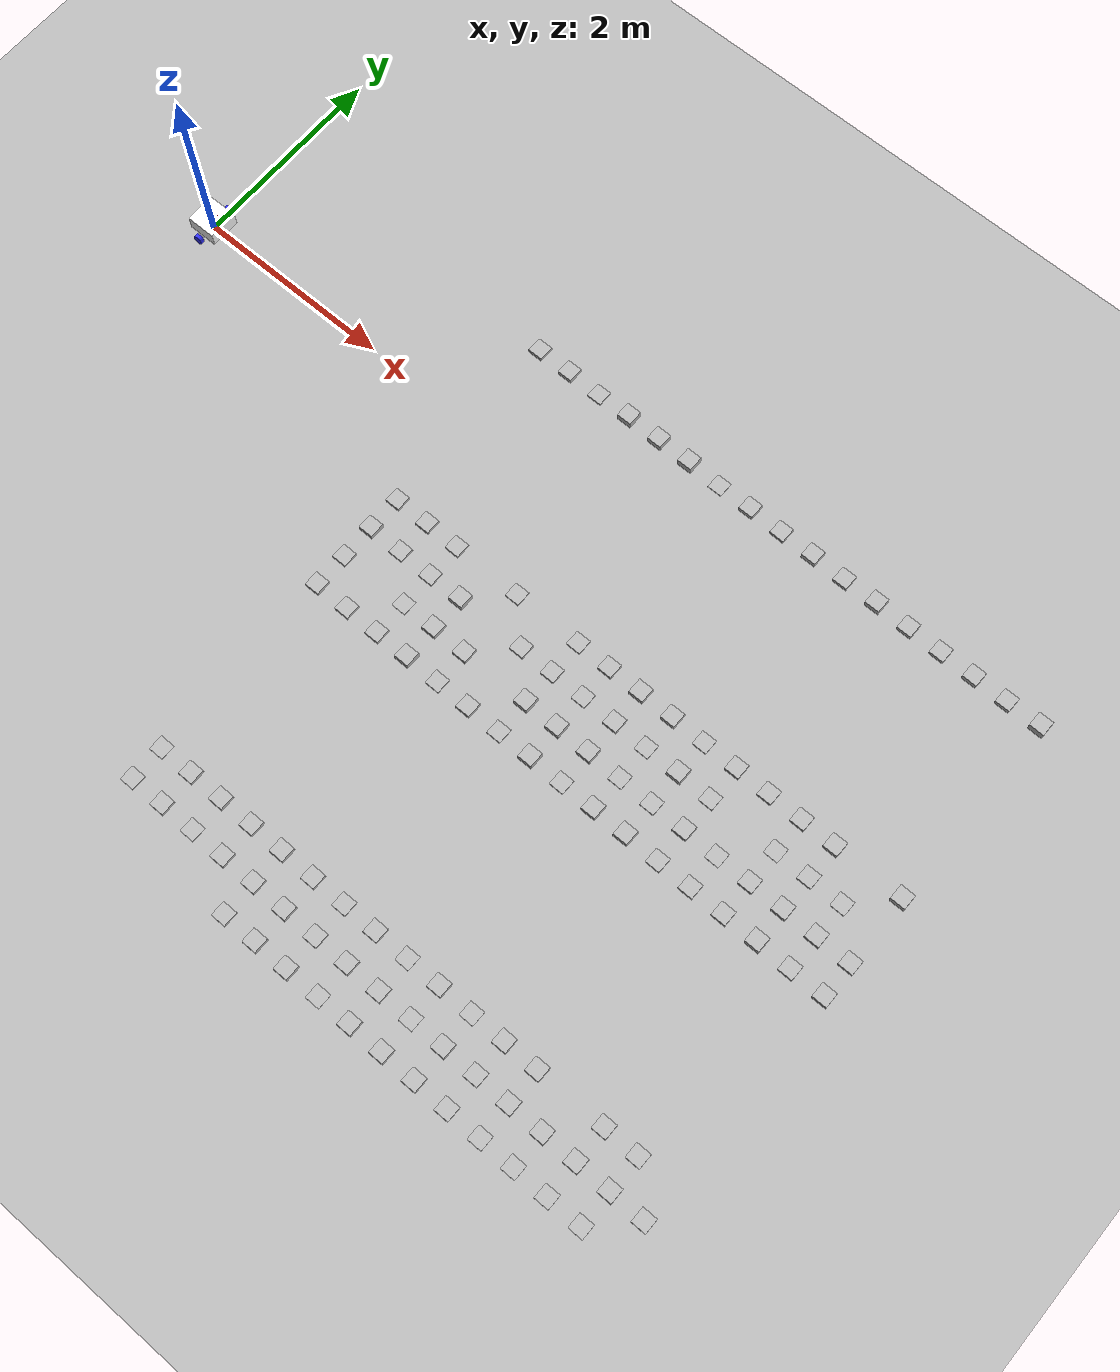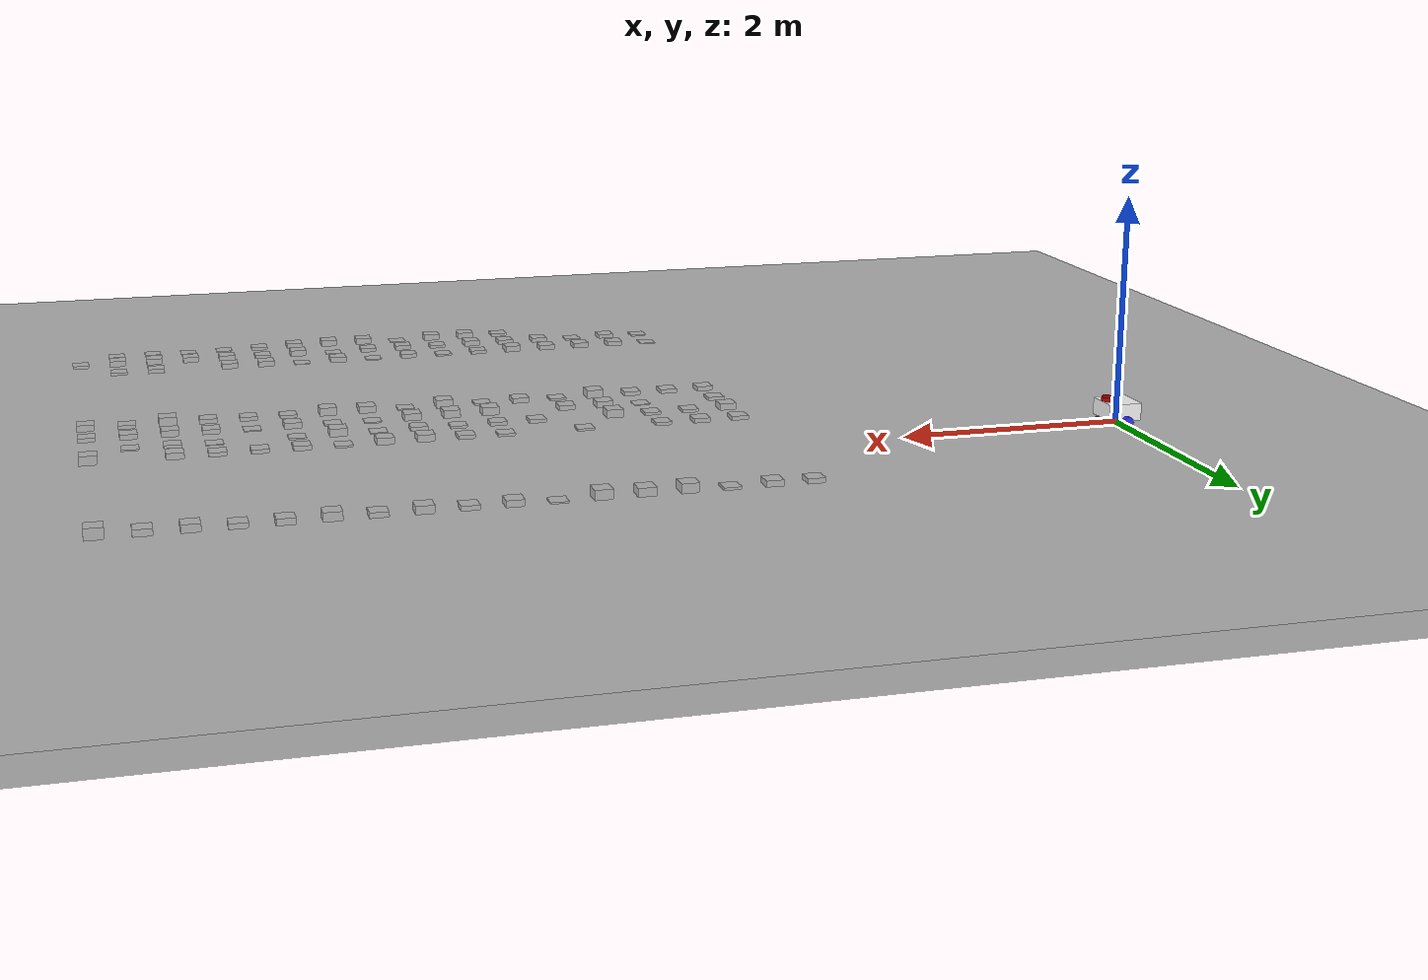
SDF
<sdf version="1.6">
 <world name="ugv_rough">
  <model name="ground">
   <static>true</static>
   <link name="l">
    <collision name="c"><geometry><box><size>60 60 0.2</size></box></geometry></collision>
    <visual name="v"><geometry><box><size>60 60 0.2</size></box></geometry></visual>
    <pose>0 0 -0.1 0 0 0</pose>
   </link>
  </model>
  <model name="r2_2">
   <static>true</static>
   <pose>3.175 -4.325 0.0066 0 0 0</pose>
   <link name="l">
    <collision name="c"><geometry><box><size>0.15 0.15 0.013256710384994794</size></box></geometry></collision>
    <visual name="v"><geometry><box><size>0.15 0.15 0.013256710384994794</size></box></geometry></visual>
   </link>
  </model>
  <model name="r2_3">
   <static>true</static>
   <pose>3.175 -3.975 0.0039 0 0 0</pose>
   <link name="l">
    <collision name="c"><geometry><box><size>0.15 0.15 0.007820225035002343</size></box></geometry></collision>
    <visual name="v"><geometry><box><size>0.15 0.15 0.007820225035002343</size></box></geometry></visual>
   </link>
  </model>
  <model name="r2_6">
   <static>true</static>
   <pose>3.525 -4.325 0.0186 0 0 0</pose>
   <link name="l">
    <collision name="c"><geometry><box><size>0.15 0.15 0.03726730991594243</size></box></geometry></collision>
    <visual name="v"><geometry><box><size>0.15 0.15 0.03726730991594243</size></box></geometry></visual>
   </link>
  </model>
  <model name="r2_7">
   <static>true</static>
   <pose>3.525 -3.975 0.0212 0 0 0</pose>
   <link name="l">
    <collision name="c"><geometry><box><size>0.15 0.15 0.04243665575795364</size></box></geometry></collision>
    <visual name="v"><geometry><box><size>0.15 0.15 0.04243665575795364</size></box></geometry></visual>
   </link>
  </model>
  <model name="r2_10">
   <static>true</static>
   <pose>3.875 -4.325 0.0068 0 0 0</pose>
   <link name="l">
    <collision name="c"><geometry><box><size>0.15 0.15 0.013529082386057052</size></box></geometry></collision>
    <visual name="v"><geometry><box><size>0.15 0.15 0.013529082386057052</size></box></geometry></visual>
   </link>
  </model>
  <model name="r2_11">
   <static>true</static>
   <pose>3.875 -3.975 0.0237 0 0 0</pose>
   <link name="l">
    <collision name="c"><geometry><box><size>0.15 0.15 0.047312882709659936</size></box></geometry></collision>
    <visual name="v"><geometry><box><size>0.15 0.15 0.047312882709659936</size></box></geometry></visual>
   </link>
  </model>
  <model name="r2_14">
   <static>true</static>
   <pose>4.225 -4.325 0.0203 0 0 0</pose>
   <link name="l">
    <collision name="c"><geometry><box><size>0.15 0.15 0.0405842556638755</size></box></geometry></collision>
    <visual name="v"><geometry><box><size>0.15 0.15 0.0405842556638755</size></box></geometry></visual>
   </link>
  </model>
  <model name="r2_15">
   <static>true</static>
   <pose>4.225 -3.975 0.0227 0 0 0</pose>
   <link name="l">
    <collision name="c"><geometry><box><size>0.15 0.15 0.04540995489792459</size></box></geometry></collision>
    <visual name="v"><geometry><box><size>0.15 0.15 0.04540995489792459</size></box></geometry></visual>
   </link>
  </model>
  <model name="r2_17">
   <static>true</static>
   <pose>4.575 -4.675 0.0140 0 0 0</pose>
   <link name="l">
    <collision name="c"><geometry><box><size>0.15 0.15 0.02797375995807051</size></box></geometry></collision>
    <visual name="v"><geometry><box><size>0.15 0.15 0.02797375995807051</size></box></geometry></visual>
   </link>
  </model>
  <model name="r2_18">
   <static>true</static>
   <pose>4.575 -4.325 0.0196 0 0 0</pose>
   <link name="l">
    <collision name="c"><geometry><box><size>0.15 0.15 0.039159514806595436</size></box></geometry></collision>
    <visual name="v"><geometry><box><size>0.15 0.15 0.039159514806595436</size></box></geometry></visual>
   </link>
  </model>
  <model name="r2_19">
   <static>true</static>
   <pose>4.575 -3.975 0.0280 0 0 0</pose>
   <link name="l">
    <collision name="c"><geometry><box><size>0.15 0.15 0.05608994125541822</size></box></geometry></collision>
    <visual name="v"><geometry><box><size>0.15 0.15 0.05608994125541822</size></box></geometry></visual>
   </link>
  </model>
  <model name="r2_21">
   <static>true</static>
   <pose>4.925 -4.675 0.0270 0 0 0</pose>
   <link name="l">
    <collision name="c"><geometry><box><size>0.15 0.15 0.054028632875019744</size></box></geometry></collision>
    <visual name="v"><geometry><box><size>0.15 0.15 0.054028632875019744</size></box></geometry></visual>
   </link>
  </model>
  <model name="r2_22">
   <static>true</static>
   <pose>4.925 -4.325 0.0255 0 0 0</pose>
   <link name="l">
    <collision name="c"><geometry><box><size>0.15 0.15 0.05093037567539028</size></box></geometry></collision>
    <visual name="v"><geometry><box><size>0.15 0.15 0.05093037567539028</size></box></geometry></visual>
   </link>
  </model>
  <model name="r2_23">
   <static>true</static>
   <pose>4.925 -3.975 0.0157 0 0 0</pose>
   <link name="l">
    <collision name="c"><geometry><box><size>0.15 0.15 0.03146908518881094</size></box></geometry></collision>
    <visual name="v"><geometry><box><size>0.15 0.15 0.03146908518881094</size></box></geometry></visual>
   </link>
  </model>
  <model name="r2_25">
   <static>true</static>
   <pose>5.275 -4.675 0.0281 0 0 0</pose>
   <link name="l">
    <collision name="c"><geometry><box><size>0.15 0.15 0.05613510296844524</size></box></geometry></collision>
    <visual name="v"><geometry><box><size>0.15 0.15 0.05613510296844524</size></box></geometry></visual>
   </link>
  </model>
  <model name="r2_26">
   <static>true</static>
   <pose>5.275 -4.325 0.0132 0 0 0</pose>
   <link name="l">
    <collision name="c"><geometry><box><size>0.15 0.15 0.026409479955861976</size></box></geometry></collision>
    <visual name="v"><geometry><box><size>0.15 0.15 0.026409479955861976</size></box></geometry></visual>
   </link>
  </model>
  <model name="r2_27">
   <static>true</static>
   <pose>5.275 -3.975 0.0087 0 0 0</pose>
   <link name="l">
    <collision name="c"><geometry><box><size>0.15 0.15 0.01736180962630515</size></box></geometry></collision>
    <visual name="v"><geometry><box><size>0.15 0.15 0.01736180962630515</size></box></geometry></visual>
   </link>
  </model>
  <model name="r2_29">
   <static>true</static>
   <pose>5.625 -4.675 0.0030 0 0 0</pose>
   <link name="l">
    <collision name="c"><geometry><box><size>0.15 0.15 0.006075682831431761</size></box></geometry></collision>
    <visual name="v"><geometry><box><size>0.15 0.15 0.006075682831431761</size></box></geometry></visual>
   </link>
  </model>
  <model name="r2_30">
   <static>true</static>
   <pose>5.625 -4.325 0.0216 0 0 0</pose>
   <link name="l">
    <collision name="c"><geometry><box><size>0.15 0.15 0.04312362406662981</size></box></geometry></collision>
    <visual name="v"><geometry><box><size>0.15 0.15 0.04312362406662981</size></box></geometry></visual>
   </link>
  </model>
  <model name="r2_31">
   <static>true</static>
   <pose>5.625 -3.975 0.0193 0 0 0</pose>
   <link name="l">
    <collision name="c"><geometry><box><size>0.15 0.15 0.03869738060338249</size></box></geometry></collision>
    <visual name="v"><geometry><box><size>0.15 0.15 0.03869738060338249</size></box></geometry></visual>
   </link>
  </model>
  <model name="r2_33">
   <static>true</static>
   <pose>5.975 -4.675 0.0282 0 0 0</pose>
   <link name="l">
    <collision name="c"><geometry><box><size>0.15 0.15 0.05635785198599581</size></box></geometry></collision>
    <visual name="v"><geometry><box><size>0.15 0.15 0.05635785198599581</size></box></geometry></visual>
   </link>
  </model>
  <model name="r2_34">
   <static>true</static>
   <pose>5.975 -4.325 0.0183 0 0 0</pose>
   <link name="l">
    <collision name="c"><geometry><box><size>0.15 0.15 0.03655429108189374</size></box></geometry></collision>
    <visual name="v"><geometry><box><size>0.15 0.15 0.03655429108189374</size></box></geometry></visual>
   </link>
  </model>
  <model name="r2_35">
   <static>true</static>
   <pose>5.975 -3.975 0.0046 0 0 0</pose>
   <link name="l">
    <collision name="c"><geometry><box><size>0.15 0.15 0.009290719895527067</size></box></geometry></collision>
    <visual name="v"><geometry><box><size>0.15 0.15 0.009290719895527067</size></box></geometry></visual>
   </link>
  </model>
  <model name="r2_37">
   <static>true</static>
   <pose>6.325 -4.675 0.0286 0 0 0</pose>
   <link name="l">
    <collision name="c"><geometry><box><size>0.15 0.15 0.05725526355006548</size></box></geometry></collision>
    <visual name="v"><geometry><box><size>0.15 0.15 0.05725526355006548</size></box></geometry></visual>
   </link>
  </model>
  <model name="r2_38">
   <static>true</static>
   <pose>6.325 -4.325 0.0026 0 0 0</pose>
   <link name="l">
    <collision name="c"><geometry><box><size>0.15 0.15 0.005107141670628339</size></box></geometry></collision>
    <visual name="v"><geometry><box><size>0.15 0.15 0.005107141670628339</size></box></geometry></visual>
   </link>
  </model>
  <model name="r2_39">
   <static>true</static>
   <pose>6.325 -3.975 0.0243 0 0 0</pose>
   <link name="l">
    <collision name="c"><geometry><box><size>0.15 0.15 0.04861249333709487</size></box></geometry></collision>
    <visual name="v"><geometry><box><size>0.15 0.15 0.04861249333709487</size></box></geometry></visual>
   </link>
  </model>
  <model name="r2_41">
   <static>true</static>
   <pose>6.675 -4.675 0.0239 0 0 0</pose>
   <link name="l">
    <collision name="c"><geometry><box><size>0.15 0.15 0.04784587832204232</size></box></geometry></collision>
    <visual name="v"><geometry><box><size>0.15 0.15 0.04784587832204232</size></box></geometry></visual>
   </link>
  </model>
  <model name="r2_42">
   <static>true</static>
   <pose>6.675 -4.325 0.0276 0 0 0</pose>
   <link name="l">
    <collision name="c"><geometry><box><size>0.15 0.15 0.05527527500507175</size></box></geometry></collision>
    <visual name="v"><geometry><box><size>0.15 0.15 0.05527527500507175</size></box></geometry></visual>
   </link>
  </model>
  <model name="r2_43">
   <static>true</static>
   <pose>6.675 -3.975 0.0025 0 0 0</pose>
   <link name="l">
    <collision name="c"><geometry><box><size>0.15 0.15 0.00504084069925413</size></box></geometry></collision>
    <visual name="v"><geometry><box><size>0.15 0.15 0.00504084069925413</size></box></geometry></visual>
   </link>
  </model>
  <model name="r2_45">
   <static>true</static>
   <pose>7.025 -4.675 0.0145 0 0 0</pose>
   <link name="l">
    <collision name="c"><geometry><box><size>0.15 0.15 0.02896229716275482</size></box></geometry></collision>
    <visual name="v"><geometry><box><size>0.15 0.15 0.02896229716275482</size></box></geometry></visual>
   </link>
  </model>
  <model name="r2_46">
   <static>true</static>
   <pose>7.025 -4.325 0.0148 0 0 0</pose>
   <link name="l">
    <collision name="c"><geometry><box><size>0.15 0.15 0.029557489277120635</size></box></geometry></collision>
    <visual name="v"><geometry><box><size>0.15 0.15 0.029557489277120635</size></box></geometry></visual>
   </link>
  </model>
  <model name="r2_47">
   <static>true</static>
   <pose>7.025 -3.975 0.0251 0 0 0</pose>
   <link name="l">
    <collision name="c"><geometry><box><size>0.15 0.15 0.050287287544849846</size></box></geometry></collision>
    <visual name="v"><geometry><box><size>0.15 0.15 0.050287287544849846</size></box></geometry></visual>
   </link>
  </model>
  <model name="r2_49">
   <static>true</static>
   <pose>7.375 -4.675 0.0054 0 0 0</pose>
   <link name="l">
    <collision name="c"><geometry><box><size>0.15 0.15 0.010802139809139048</size></box></geometry></collision>
    <visual name="v"><geometry><box><size>0.15 0.15 0.010802139809139048</size></box></geometry></visual>
   </link>
  </model>
  <model name="r2_50">
   <static>true</static>
   <pose>7.375 -4.325 0.0225 0 0 0</pose>
   <link name="l">
    <collision name="c"><geometry><box><size>0.15 0.15 0.04507203792495816</size></box></geometry></collision>
    <visual name="v"><geometry><box><size>0.15 0.15 0.04507203792495816</size></box></geometry></visual>
   </link>
  </model>
  <model name="r2_51">
   <static>true</static>
   <pose>7.375 -3.975 0.0246 0 0 0</pose>
   <link name="l">
    <collision name="c"><geometry><box><size>0.15 0.15 0.04921389009632021</size></box></geometry></collision>
    <visual name="v"><geometry><box><size>0.15 0.15 0.04921389009632021</size></box></geometry></visual>
   </link>
  </model>
  <model name="r2_53">
   <static>true</static>
   <pose>7.725 -4.675 0.0028 0 0 0</pose>
   <link name="l">
    <collision name="c"><geometry><box><size>0.15 0.15 0.0055140146984223246</size></box></geometry></collision>
    <visual name="v"><geometry><box><size>0.15 0.15 0.0055140146984223246</size></box></geometry></visual>
   </link>
  </model>
  <model name="r2_54">
   <static>true</static>
   <pose>7.725 -4.325 0.0248 0 0 0</pose>
   <link name="l">
    <collision name="c"><geometry><box><size>0.15 0.15 0.04965137477425715</size></box></geometry></collision>
    <visual name="v"><geometry><box><size>0.15 0.15 0.04965137477425715</size></box></geometry></visual>
   </link>
  </model>
  <model name="r2_57">
   <static>true</static>
   <pose>8.075 -4.675 0.0069 0 0 0</pose>
   <link name="l">
    <collision name="c"><geometry><box><size>0.15 0.15 0.013852289244110649</size></box></geometry></collision>
    <visual name="v"><geometry><box><size>0.15 0.15 0.013852289244110649</size></box></geometry></visual>
   </link>
  </model>
  <model name="r2_58">
   <static>true</static>
   <pose>8.075 -4.325 0.0275 0 0 0</pose>
   <link name="l">
    <collision name="c"><geometry><box><size>0.15 0.15 0.05505852758583187</size></box></geometry></collision>
    <visual name="v"><geometry><box><size>0.15 0.15 0.05505852758583187</size></box></geometry></visual>
   </link>
  </model>
  <model name="r2_59">
   <static>true</static>
   <pose>8.075 -3.975 0.0190 0 0 0</pose>
   <link name="l">
    <collision name="c"><geometry><box><size>0.15 0.15 0.03802440422649483</size></box></geometry></collision>
    <visual name="v"><geometry><box><size>0.15 0.15 0.03802440422649483</size></box></geometry></visual>
   </link>
  </model>
  <model name="r2_61">
   <static>true</static>
   <pose>8.425 -4.675 0.0047 0 0 0</pose>
   <link name="l">
    <collision name="c"><geometry><box><size>0.15 0.15 0.009415597594498148</size></box></geometry></collision>
    <visual name="v"><geometry><box><size>0.15 0.15 0.009415597594498148</size></box></geometry></visual>
   </link>
  </model>
  <model name="r2_62">
   <static>true</static>
   <pose>8.425 -4.325 0.0267 0 0 0</pose>
   <link name="l">
    <collision name="c"><geometry><box><size>0.15 0.15 0.053427337198977354</size></box></geometry></collision>
    <visual name="v"><geometry><box><size>0.15 0.15 0.053427337198977354</size></box></geometry></visual>
   </link>
  </model>
  <model name="r2_63">
   <static>true</static>
   <pose>8.425 -3.975 0.0118 0 0 0</pose>
   <link name="l">
    <collision name="c"><geometry><box><size>0.15 0.15 0.023606247842656955</size></box></geometry></collision>
    <visual name="v"><geometry><box><size>0.15 0.15 0.023606247842656955</size></box></geometry></visual>
   </link>
  </model>
  <model name="r2_66">
   <static>true</static>
   <pose>8.775 -4.325 0.0129 0 0 0</pose>
   <link name="l">
    <collision name="c"><geometry><box><size>0.15 0.15 0.02582126996665084</size></box></geometry></collision>
    <visual name="v"><geometry><box><size>0.15 0.15 0.02582126996665084</size></box></geometry></visual>
   </link>
  </model>
  <model name="r3_0">
   <static>true</static>
   <pose>3.175 -2.025 0.0199 0 0 0</pose>
   <link name="l">
    <collision name="c"><geometry><box><size>0.15 0.15 0.03978731367518426</size></box></geometry></collision>
    <visual name="v"><geometry><box><size>0.15 0.15 0.03978731367518426</size></box></geometry></visual>
   </link>
  </model>
  <model name="r3_1">
   <static>true</static>
   <pose>3.175 -1.675 0.0144 0 0 0</pose>
   <link name="l">
    <collision name="c"><geometry><box><size>0.15 0.15 0.028799236548820543</size></box></geometry></collision>
    <visual name="v"><geometry><box><size>0.15 0.15 0.028799236548820543</size></box></geometry></visual>
   </link>
  </model>
  <model name="r3_2">
   <static>true</static>
   <pose>3.175 -1.325 0.0289 0 0 0</pose>
   <link name="l">
    <collision name="c"><geometry><box><size>0.15 0.15 0.0577649405378974</size></box></geometry></collision>
    <visual name="v"><geometry><box><size>0.15 0.15 0.0577649405378974</size></box></geometry></visual>
   </link>
  </model>
  <model name="r3_3">
   <static>true</static>
   <pose>3.175 -0.975 0.0179 0 0 0</pose>
   <link name="l">
    <collision name="c"><geometry><box><size>0.15 0.15 0.03573770137980951</size></box></geometry></collision>
    <visual name="v"><geometry><box><size>0.15 0.15 0.03573770137980951</size></box></geometry></visual>
   </link>
  </model>
  <model name="r3_4">
   <static>true</static>
   <pose>3.525 -2.025 0.0181 0 0 0</pose>
   <link name="l">
    <collision name="c"><geometry><box><size>0.15 0.15 0.03626877212770383</size></box></geometry></collision>
    <visual name="v"><geometry><box><size>0.15 0.15 0.03626877212770383</size></box></geometry></visual>
   </link>
  </model>
  <model name="r3_6">
   <static>true</static>
   <pose>3.525 -1.325 0.0134 0 0 0</pose>
   <link name="l">
    <collision name="c"><geometry><box><size>0.15 0.15 0.026792071501047527</size></box></geometry></collision>
    <visual name="v"><geometry><box><size>0.15 0.15 0.026792071501047527</size></box></geometry></visual>
   </link>
  </model>
  <model name="r3_7">
   <static>true</static>
   <pose>3.525 -0.975 0.0190 0 0 0</pose>
   <link name="l">
    <collision name="c"><geometry><box><size>0.15 0.15 0.0380435219419014</size></box></geometry></collision>
    <visual name="v"><geometry><box><size>0.15 0.15 0.0380435219419014</size></box></geometry></visual>
   </link>
  </model>
  <model name="r3_8">
   <static>true</static>
   <pose>3.875 -2.025 0.0181 0 0 0</pose>
   <link name="l">
    <collision name="c"><geometry><box><size>0.15 0.15 0.03610588520919266</size></box></geometry></collision>
    <visual name="v"><geometry><box><size>0.15 0.15 0.03610588520919266</size></box></geometry></visual>
   </link>
  </model>
  <model name="r3_9">
   <static>true</static>
   <pose>3.875 -1.675 0.0035 0 0 0</pose>
   <link name="l">
    <collision name="c"><geometry><box><size>0.15 0.15 0.0070311796048823805</size></box></geometry></collision>
    <visual name="v"><geometry><box><size>0.15 0.15 0.0070311796048823805</size></box></geometry></visual>
   </link>
  </model>
  <model name="r3_10">
   <static>true</static>
   <pose>3.875 -1.325 0.0118 0 0 0</pose>
   <link name="l">
    <collision name="c"><geometry><box><size>0.15 0.15 0.023607737346454574</size></box></geometry></collision>
    <visual name="v"><geometry><box><size>0.15 0.15 0.023607737346454574</size></box></geometry></visual>
   </link>
  </model>
  <model name="r3_11">
   <static>true</static>
   <pose>3.875 -0.975 0.0135 0 0 0</pose>
   <link name="l">
    <collision name="c"><geometry><box><size>0.15 0.15 0.02709058736644085</size></box></geometry></collision>
    <visual name="v"><geometry><box><size>0.15 0.15 0.02709058736644085</size></box></geometry></visual>
   </link>
  </model>
  <model name="r3_12">
   <static>true</static>
   <pose>4.225 -2.025 0.0361 0 0 0</pose>
   <link name="l">
    <collision name="c"><geometry><box><size>0.15 0.15 0.07216767222041935</size></box></geometry></collision>
    <visual name="v"><geometry><box><size>0.15 0.15 0.07216767222041935</size></box></geometry></visual>
   </link>
  </model>
  <model name="r3_13">
   <static>true</static>
   <pose>4.225 -1.675 0.0287 0 0 0</pose>
   <link name="l">
    <collision name="c"><geometry><box><size>0.15 0.15 0.057387789887413054</size></box></geometry></collision>
    <visual name="v"><geometry><box><size>0.15 0.15 0.057387789887413054</size></box></geometry></visual>
   </link>
  </model>
  <model name="r3_14">
   <static>true</static>
   <pose>4.225 -1.325 0.0359 0 0 0</pose>
   <link name="l">
    <collision name="c"><geometry><box><size>0.15 0.15 0.07188927334160525</size></box></geometry></collision>
    <visual name="v"><geometry><box><size>0.15 0.15 0.07188927334160525</size></box></geometry></visual>
   </link>
  </model>
  <model name="r3_16">
   <static>true</static>
   <pose>4.575 -2.025 0.0091 0 0 0</pose>
   <link name="l">
    <collision name="c"><geometry><box><size>0.15 0.15 0.018277457167349402</size></box></geometry></collision>
    <visual name="v"><geometry><box><size>0.15 0.15 0.018277457167349402</size></box></geometry></visual>
   </link>
  </model>
  <model name="r3_17">
   <static>true</static>
   <pose>4.575 -1.675 0.0215 0 0 0</pose>
   <link name="l">
    <collision name="c"><geometry><box><size>0.15 0.15 0.04305176529085866</size></box></geometry></collision>
    <visual name="v"><geometry><box><size>0.15 0.15 0.04305176529085866</size></box></geometry></visual>
   </link>
  </model>
  <model name="r3_19">
   <static>true</static>
   <pose>4.575 -0.975 0.0092 0 0 0</pose>
   <link name="l">
    <collision name="c"><geometry><box><size>0.15 0.15 0.01834845285690344</size></box></geometry></collision>
    <visual name="v"><geometry><box><size>0.15 0.15 0.01834845285690344</size></box></geometry></visual>
   </link>
  </model>
  <model name="r3_20">
   <static>true</static>
   <pose>4.925 -2.025 0.0224 0 0 0</pose>
   <link name="l">
    <collision name="c"><geometry><box><size>0.15 0.15 0.044785298438368065</size></box></geometry></collision>
    <visual name="v"><geometry><box><size>0.15 0.15 0.044785298438368065</size></box></geometry></visual>
   </link>
  </model>
  <model name="r3_22">
   <static>true</static>
   <pose>4.925 -1.325 0.0157 0 0 0</pose>
   <link name="l">
    <collision name="c"><geometry><box><size>0.15 0.15 0.03136282226015231</size></box></geometry></collision>
    <visual name="v"><geometry><box><size>0.15 0.15 0.03136282226015231</size></box></geometry></visual>
   </link>
  </model>
  <model name="r3_24">
   <static>true</static>
   <pose>5.275 -2.025 0.0096 0 0 0</pose>
   <link name="l">
    <collision name="c"><geometry><box><size>0.15 0.15 0.019245496212931403</size></box></geometry></collision>
    <visual name="v"><geometry><box><size>0.15 0.15 0.019245496212931403</size></box></geometry></visual>
   </link>
  </model>
  <model name="r3_25">
   <static>true</static>
   <pose>5.275 -1.675 0.0358 0 0 0</pose>
   <link name="l">
    <collision name="c"><geometry><box><size>0.15 0.15 0.07163030312678313</size></box></geometry></collision>
    <visual name="v"><geometry><box><size>0.15 0.15 0.07163030312678313</size></box></geometry></visual>
   </link>
  </model>
  <model name="r3_26">
   <static>true</static>
   <pose>5.275 -1.325 0.0155 0 0 0</pose>
   <link name="l">
    <collision name="c"><geometry><box><size>0.15 0.15 0.030932606494841936</size></box></geometry></collision>
    <visual name="v"><geometry><box><size>0.15 0.15 0.030932606494841936</size></box></geometry></visual>
   </link>
  </model>
  <model name="r3_27">
   <static>true</static>
   <pose>5.275 -0.975 0.0107 0 0 0</pose>
   <link name="l">
    <collision name="c"><geometry><box><size>0.15 0.15 0.021428515556068027</size></box></geometry></collision>
    <visual name="v"><geometry><box><size>0.15 0.15 0.021428515556068027</size></box></geometry></visual>
   </link>
  </model>
  <model name="r3_28">
   <static>true</static>
   <pose>5.625 -2.025 0.0365 0 0 0</pose>
   <link name="l">
    <collision name="c"><geometry><box><size>0.15 0.15 0.07290938206406333</size></box></geometry></collision>
    <visual name="v"><geometry><box><size>0.15 0.15 0.07290938206406333</size></box></geometry></visual>
   </link>
  </model>
  <model name="r3_29">
   <static>true</static>
   <pose>5.625 -1.675 0.0342 0 0 0</pose>
   <link name="l">
    <collision name="c"><geometry><box><size>0.15 0.15 0.06849351522834843</size></box></geometry></collision>
    <visual name="v"><geometry><box><size>0.15 0.15 0.06849351522834843</size></box></geometry></visual>
   </link>
  </model>
  <model name="r3_30">
   <static>true</static>
   <pose>5.625 -1.325 0.0102 0 0 0</pose>
   <link name="l">
    <collision name="c"><geometry><box><size>0.15 0.15 0.020389075504252202</size></box></geometry></collision>
    <visual name="v"><geometry><box><size>0.15 0.15 0.020389075504252202</size></box></geometry></visual>
   </link>
  </model>
  <model name="r3_31">
   <static>true</static>
   <pose>5.625 -0.975 0.0171 0 0 0</pose>
   <link name="l">
    <collision name="c"><geometry><box><size>0.15 0.15 0.03417428429066563</size></box></geometry></collision>
    <visual name="v"><geometry><box><size>0.15 0.15 0.03417428429066563</size></box></geometry></visual>
   </link>
  </model>
  <model name="r3_32">
   <static>true</static>
   <pose>5.975 -2.025 0.0079 0 0 0</pose>
   <link name="l">
    <collision name="c"><geometry><box><size>0.15 0.15 0.015775584100856062</size></box></geometry></collision>
    <visual name="v"><geometry><box><size>0.15 0.15 0.015775584100856062</size></box></geometry></visual>
   </link>
  </model>
  <model name="r3_33">
   <static>true</static>
   <pose>5.975 -1.675 0.0306 0 0 0</pose>
   <link name="l">
    <collision name="c"><geometry><box><size>0.15 0.15 0.06115853563331869</size></box></geometry></collision>
    <visual name="v"><geometry><box><size>0.15 0.15 0.06115853563331869</size></box></geometry></visual>
   </link>
  </model>
  <model name="r3_34">
   <static>true</static>
   <pose>5.975 -1.325 0.0182 0 0 0</pose>
   <link name="l">
    <collision name="c"><geometry><box><size>0.15 0.15 0.0363368438637016</size></box></geometry></collision>
    <visual name="v"><geometry><box><size>0.15 0.15 0.0363368438637016</size></box></geometry></visual>
   </link>
  </model>
  <model name="r3_35">
   <static>true</static>
   <pose>5.975 -0.975 0.0308 0 0 0</pose>
   <link name="l">
    <collision name="c"><geometry><box><size>0.15 0.15 0.06161153983981115</size></box></geometry></collision>
    <visual name="v"><geometry><box><size>0.15 0.15 0.06161153983981115</size></box></geometry></visual>
   </link>
  </model>
  <model name="r3_36">
   <static>true</static>
   <pose>6.325 -2.025 0.0302 0 0 0</pose>
   <link name="l">
    <collision name="c"><geometry><box><size>0.15 0.15 0.06035965542624043</size></box></geometry></collision>
    <visual name="v"><geometry><box><size>0.15 0.15 0.06035965542624043</size></box></geometry></visual>
   </link>
  </model>
  <model name="r3_37">
   <static>true</static>
   <pose>6.325 -1.675 0.0053 0 0 0</pose>
   <link name="l">
    <collision name="c"><geometry><box><size>0.15 0.15 0.010634962234664336</size></box></geometry></collision>
    <visual name="v"><geometry><box><size>0.15 0.15 0.010634962234664336</size></box></geometry></visual>
   </link>
  </model>
  <model name="r3_38">
   <static>true</static>
   <pose>6.325 -1.325 0.0054 0 0 0</pose>
   <link name="l">
    <collision name="c"><geometry><box><size>0.15 0.15 0.010886729706736454</size></box></geometry></collision>
    <visual name="v"><geometry><box><size>0.15 0.15 0.010886729706736454</size></box></geometry></visual>
   </link>
  </model>
  <model name="r3_39">
   <static>true</static>
   <pose>6.325 -0.975 0.0297 0 0 0</pose>
   <link name="l">
    <collision name="c"><geometry><box><size>0.15 0.15 0.05937594450777362</size></box></geometry></collision>
    <visual name="v"><geometry><box><size>0.15 0.15 0.05937594450777362</size></box></geometry></visual>
   </link>
  </model>
  <model name="r3_40">
   <static>true</static>
   <pose>6.675 -2.025 0.0348 0 0 0</pose>
   <link name="l">
    <collision name="c"><geometry><box><size>0.15 0.15 0.06968268230597109</size></box></geometry></collision>
    <visual name="v"><geometry><box><size>0.15 0.15 0.06968268230597109</size></box></geometry></visual>
   </link>
  </model>
  <model name="r3_41">
   <static>true</static>
   <pose>6.675 -1.675 0.0072 0 0 0</pose>
   <link name="l">
    <collision name="c"><geometry><box><size>0.15 0.15 0.014494519248766623</size></box></geometry></collision>
    <visual name="v"><geometry><box><size>0.15 0.15 0.014494519248766623</size></box></geometry></visual>
   </link>
  </model>
  <model name="r3_42">
   <static>true</static>
   <pose>6.675 -1.325 0.0343 0 0 0</pose>
   <link name="l">
    <collision name="c"><geometry><box><size>0.15 0.15 0.06865250550557066</size></box></geometry></collision>
    <visual name="v"><geometry><box><size>0.15 0.15 0.06865250550557066</size></box></geometry></visual>
   </link>
  </model>
  <model name="r3_43">
   <static>true</static>
   <pose>6.675 -0.975 0.0081 0 0 0</pose>
   <link name="l">
    <collision name="c"><geometry><box><size>0.15 0.15 0.016219594911802977</size></box></geometry></collision>
    <visual name="v"><geometry><box><size>0.15 0.15 0.016219594911802977</size></box></geometry></visual>
   </link>
  </model>
  <model name="r3_44">
   <static>true</static>
   <pose>7.025 -2.025 0.0136 0 0 0</pose>
   <link name="l">
    <collision name="c"><geometry><box><size>0.15 0.15 0.02728232589188098</size></box></geometry></collision>
    <visual name="v"><geometry><box><size>0.15 0.15 0.02728232589188098</size></box></geometry></visual>
   </link>
  </model>
  <model name="r3_45">
   <static>true</static>
   <pose>7.025 -1.675 0.0255 0 0 0</pose>
   <link name="l">
    <collision name="c"><geometry><box><size>0.15 0.15 0.050978325822820754</size></box></geometry></collision>
    <visual name="v"><geometry><box><size>0.15 0.15 0.050978325822820754</size></box></geometry></visual>
   </link>
  </model>
  <model name="r3_46">
   <static>true</static>
   <pose>7.025 -1.325 0.0060 0 0 0</pose>
   <link name="l">
    <collision name="c"><geometry><box><size>0.15 0.15 0.011924220651110132</size></box></geometry></collision>
    <visual name="v"><geometry><box><size>0.15 0.15 0.011924220651110132</size></box></geometry></visual>
   </link>
  </model>
  <model name="r3_47">
   <static>true</static>
   <pose>7.025 -0.975 0.0204 0 0 0</pose>
   <link name="l">
    <collision name="c"><geometry><box><size>0.15 0.15 0.0408727996631479</size></box></geometry></collision>
    <visual name="v"><geometry><box><size>0.15 0.15 0.0408727996631479</size></box></geometry></visual>
   </link>
  </model>
  <model name="r3_48">
   <static>true</static>
   <pose>7.375 -2.025 0.0174 0 0 0</pose>
   <link name="l">
    <collision name="c"><geometry><box><size>0.15 0.15 0.034823452464879154</size></box></geometry></collision>
    <visual name="v"><geometry><box><size>0.15 0.15 0.034823452464879154</size></box></geometry></visual>
   </link>
  </model>
  <model name="r3_49">
   <static>true</static>
   <pose>7.375 -1.675 0.0039 0 0 0</pose>
   <link name="l">
    <collision name="c"><geometry><box><size>0.15 0.15 0.00780858588167062</size></box></geometry></collision>
    <visual name="v"><geometry><box><size>0.15 0.15 0.00780858588167062</size></box></geometry></visual>
   </link>
  </model>
  <model name="r3_51">
   <static>true</static>
   <pose>7.375 -0.975 0.0172 0 0 0</pose>
   <link name="l">
    <collision name="c"><geometry><box><size>0.15 0.15 0.03444043527840784</size></box></geometry></collision>
    <visual name="v"><geometry><box><size>0.15 0.15 0.03444043527840784</size></box></geometry></visual>
   </link>
  </model>
  <model name="r3_52">
   <static>true</static>
   <pose>7.725 -2.025 0.0201 0 0 0</pose>
   <link name="l">
    <collision name="c"><geometry><box><size>0.15 0.15 0.0401995523392679</size></box></geometry></collision>
    <visual name="v"><geometry><box><size>0.15 0.15 0.0401995523392679</size></box></geometry></visual>
   </link>
  </model>
  <model name="r3_53">
   <static>true</static>
   <pose>7.725 -1.675 0.0203 0 0 0</pose>
   <link name="l">
    <collision name="c"><geometry><box><size>0.15 0.15 0.04063785865282962</size></box></geometry></collision>
    <visual name="v"><geometry><box><size>0.15 0.15 0.04063785865282962</size></box></geometry></visual>
   </link>
  </model>
  <model name="r3_54">
   <static>true</static>
   <pose>7.725 -1.325 0.0026 0 0 0</pose>
   <link name="l">
    <collision name="c"><geometry><box><size>0.15 0.15 0.005125564605845936</size></box></geometry></collision>
    <visual name="v"><geometry><box><size>0.15 0.15 0.005125564605845936</size></box></geometry></visual>
   </link>
  </model>
  <model name="r3_55">
   <static>true</static>
   <pose>7.725 -0.975 0.0173 0 0 0</pose>
   <link name="l">
    <collision name="c"><geometry><box><size>0.15 0.15 0.034535567417939526</size></box></geometry></collision>
    <visual name="v"><geometry><box><size>0.15 0.15 0.034535567417939526</size></box></geometry></visual>
   </link>
  </model>
  <model name="r3_56">
   <static>true</static>
   <pose>8.075 -2.025 0.0391 0 0 0</pose>
   <link name="l">
    <collision name="c"><geometry><box><size>0.15 0.15 0.07819229580717839</size></box></geometry></collision>
    <visual name="v"><geometry><box><size>0.15 0.15 0.07819229580717839</size></box></geometry></visual>
   </link>
  </model>
  <model name="r3_57">
   <static>true</static>
   <pose>8.075 -1.675 0.0283 0 0 0</pose>
   <link name="l">
    <collision name="c"><geometry><box><size>0.15 0.15 0.056669944513501845</size></box></geometry></collision>
    <visual name="v"><geometry><box><size>0.15 0.15 0.056669944513501845</size></box></geometry></visual>
   </link>
  </model>
  <model name="r3_58">
   <static>true</static>
   <pose>8.075 -1.325 0.0129 0 0 0</pose>
   <link name="l">
    <collision name="c"><geometry><box><size>0.15 0.15 0.02589268669376054</size></box></geometry></collision>
    <visual name="v"><geometry><box><size>0.15 0.15 0.02589268669376054</size></box></geometry></visual>
   </link>
  </model>
  <model name="r3_59">
   <static>true</static>
   <pose>8.075 -0.975 0.0278 0 0 0</pose>
   <link name="l">
    <collision name="c"><geometry><box><size>0.15 0.15 0.055586731964522705</size></box></geometry></collision>
    <visual name="v"><geometry><box><size>0.15 0.15 0.055586731964522705</size></box></geometry></visual>
   </link>
  </model>
  <model name="r3_60">
   <static>true</static>
   <pose>8.425 -2.025 0.0158 0 0 0</pose>
   <link name="l">
    <collision name="c"><geometry><box><size>0.15 0.15 0.03167798137995011</size></box></geometry></collision>
    <visual name="v"><geometry><box><size>0.15 0.15 0.03167798137995011</size></box></geometry></visual>
   </link>
  </model>
  <model name="r3_61">
   <static>true</static>
   <pose>8.425 -1.675 0.0228 0 0 0</pose>
   <link name="l">
    <collision name="c"><geometry><box><size>0.15 0.15 0.04561616056887692</size></box></geometry></collision>
    <visual name="v"><geometry><box><size>0.15 0.15 0.04561616056887692</size></box></geometry></visual>
   </link>
  </model>
  <model name="r3_62">
   <static>true</static>
   <pose>8.425 -1.325 0.0051 0 0 0</pose>
   <link name="l">
    <collision name="c"><geometry><box><size>0.15 0.15 0.010190643400783808</size></box></geometry></collision>
    <visual name="v"><geometry><box><size>0.15 0.15 0.010190643400783808</size></box></geometry></visual>
   </link>
  </model>
  <model name="r3_64">
   <static>true</static>
   <pose>8.775 -2.025 0.0283 0 0 0</pose>
   <link name="l">
    <collision name="c"><geometry><box><size>0.15 0.15 0.056659071154692695</size></box></geometry></collision>
    <visual name="v"><geometry><box><size>0.15 0.15 0.056659071154692695</size></box></geometry></visual>
   </link>
  </model>
  <model name="r3_65">
   <static>true</static>
   <pose>8.775 -1.675 0.0184 0 0 0</pose>
   <link name="l">
    <collision name="c"><geometry><box><size>0.15 0.15 0.0368840390517357</size></box></geometry></collision>
    <visual name="v"><geometry><box><size>0.15 0.15 0.0368840390517357</size></box></geometry></visual>
   </link>
  </model>
  <model name="r3_67">
   <static>true</static>
   <pose>8.775 -0.975 0.0400 0 0 0</pose>
   <link name="l">
    <collision name="c"><geometry><box><size>0.15 0.15 0.07996913190010699</size></box></geometry></collision>
    <visual name="v"><geometry><box><size>0.15 0.15 0.07996913190010699</size></box></geometry></visual>
   </link>
  </model>
  <model name="r4_0">
   <static>true</static>
   <pose>3.175 0.975 0.0211 0 0 0</pose>
   <link name="l">
    <collision name="c"><geometry><box><size>0.15 0.15 0.042112490614010005</size></box></geometry></collision>
    <visual name="v"><geometry><box><size>0.15 0.15 0.042112490614010005</size></box></geometry></visual>
   </link>
  </model>
  <model name="r4_4">
   <static>true</static>
   <pose>3.525 0.975 0.0254 0 0 0</pose>
   <link name="l">
    <collision name="c"><geometry><box><size>0.15 0.15 0.05088628354481554</size></box></geometry></collision>
    <visual name="v"><geometry><box><size>0.15 0.15 0.05088628354481554</size></box></geometry></visual>
   </link>
  </model>
  <model name="r4_8">
   <static>true</static>
   <pose>3.875 0.975 0.0105 0 0 0</pose>
   <link name="l">
    <collision name="c"><geometry><box><size>0.15 0.15 0.020962821201639004</size></box></geometry></collision>
    <visual name="v"><geometry><box><size>0.15 0.15 0.020962821201639004</size></box></geometry></visual>
   </link>
  </model>
  <model name="r4_12">
   <static>true</static>
   <pose>4.225 0.975 0.0405 0 0 0</pose>
   <link name="l">
    <collision name="c"><geometry><box><size>0.15 0.15 0.08091072451390076</size></box></geometry></collision>
    <visual name="v"><geometry><box><size>0.15 0.15 0.08091072451390076</size></box></geometry></visual>
   </link>
  </model>
  <model name="r4_16">
   <static>true</static>
   <pose>4.575 0.975 0.0360 0 0 0</pose>
   <link name="l">
    <collision name="c"><geometry><box><size>0.15 0.15 0.07206140757071587</size></box></geometry></collision>
    <visual name="v"><geometry><box><size>0.15 0.15 0.07206140757071587</size></box></geometry></visual>
   </link>
  </model>
  <model name="r4_20">
   <static>true</static>
   <pose>4.925 0.975 0.0418 0 0 0</pose>
   <link name="l">
    <collision name="c"><geometry><box><size>0.15 0.15 0.0836343232637035</size></box></geometry></collision>
    <visual name="v"><geometry><box><size>0.15 0.15 0.0836343232637035</size></box></geometry></visual>
   </link>
  </model>
  <model name="r4_24">
   <static>true</static>
   <pose>5.275 0.975 0.0060 0 0 0</pose>
   <link name="l">
    <collision name="c"><geometry><box><size>0.15 0.15 0.012094663440427922</size></box></geometry></collision>
    <visual name="v"><geometry><box><size>0.15 0.15 0.012094663440427922</size></box></geometry></visual>
   </link>
  </model>
  <model name="r4_28">
   <static>true</static>
   <pose>5.625 0.975 0.0276 0 0 0</pose>
   <link name="l">
    <collision name="c"><geometry><box><size>0.15 0.15 0.055227059148069337</size></box></geometry></collision>
    <visual name="v"><geometry><box><size>0.15 0.15 0.055227059148069337</size></box></geometry></visual>
   </link>
  </model>
  <model name="r4_32">
   <static>true</static>
   <pose>5.975 0.975 0.0195 0 0 0</pose>
   <link name="l">
    <collision name="c"><geometry><box><size>0.15 0.15 0.03897009438664392</size></box></geometry></collision>
    <visual name="v"><geometry><box><size>0.15 0.15 0.03897009438664392</size></box></geometry></visual>
   </link>
  </model>
  <model name="r4_36">
   <static>true</static>
   <pose>6.325 0.975 0.0330 0 0 0</pose>
   <link name="l">
    <collision name="c"><geometry><box><size>0.15 0.15 0.06609068549274018</size></box></geometry></collision>
    <visual name="v"><geometry><box><size>0.15 0.15 0.06609068549274018</size></box></geometry></visual>
   </link>
  </model>
  <model name="r4_40">
   <static>true</static>
   <pose>6.675 0.975 0.0220 0 0 0</pose>
   <link name="l">
    <collision name="c"><geometry><box><size>0.15 0.15 0.04401013341926801</size></box></geometry></collision>
    <visual name="v"><geometry><box><size>0.15 0.15 0.04401013341926801</size></box></geometry></visual>
   </link>
  </model>
  <model name="r4_44">
   <static>true</static>
   <pose>7.025 0.975 0.0368 0 0 0</pose>
   <link name="l">
    <collision name="c"><geometry><box><size>0.15 0.15 0.0736485892218076</size></box></geometry></collision>
    <visual name="v"><geometry><box><size>0.15 0.15 0.0736485892218076</size></box></geometry></visual>
   </link>
  </model>
  <model name="r4_48">
   <static>true</static>
   <pose>7.375 0.975 0.0266 0 0 0</pose>
   <link name="l">
    <collision name="c"><geometry><box><size>0.15 0.15 0.05327250835103642</size></box></geometry></collision>
    <visual name="v"><geometry><box><size>0.15 0.15 0.05327250835103642</size></box></geometry></visual>
   </link>
  </model>
  <model name="r4_52">
   <static>true</static>
   <pose>7.725 0.975 0.0220 0 0 0</pose>
   <link name="l">
    <collision name="c"><geometry><box><size>0.15 0.15 0.044043448309246495</size></box></geometry></collision>
    <visual name="v"><geometry><box><size>0.15 0.15 0.044043448309246495</size></box></geometry></visual>
   </link>
  </model>
  <model name="r4_56">
   <static>true</static>
   <pose>8.075 0.975 0.0328 0 0 0</pose>
   <link name="l">
    <collision name="c"><geometry><box><size>0.15 0.15 0.06559321524303485</size></box></geometry></collision>
    <visual name="v"><geometry><box><size>0.15 0.15 0.06559321524303485</size></box></geometry></visual>
   </link>
  </model>
  <model name="r4_60">
   <static>true</static>
   <pose>8.425 0.975 0.0282 0 0 0</pose>
   <link name="l">
    <collision name="c"><geometry><box><size>0.15 0.15 0.056392196639574656</size></box></geometry></collision>
    <visual name="v"><geometry><box><size>0.15 0.15 0.056392196639574656</size></box></geometry></visual>
   </link>
  </model>
  <model name="r4_64">
   <static>true</static>
   <pose>8.775 0.975 0.0475 0 0 0</pose>
   <link name="l">
    <collision name="c"><geometry><box><size>0.15 0.15 0.09490182751915079</size></box></geometry></collision>
    <visual name="v"><geometry><box><size>0.15 0.15 0.09490182751915079</size></box></geometry></visual>
   </link>
  </model>
  <include>
   <name>nav_ugv</name>
   <uri>model://nav_ugv</uri>
   <plugin filename="ignition-gazebo-diff-drive-system" name="gz::sim::systems::DiffDrive">
    <left_joint>left_wheel_joint</left_joint>
    <left_joint>rear_left_wheel_joint</left_joint>
    <right_joint>right_wheel_joint</right_joint>
    <right_joint>rear_right_wheel_joint</right_joint>
    <wheel_separation>0.49</wheel_separation>
    <wheel_radius>0.098</wheel_radius>
    <topic>cmd_vel</topic>
    <odom_topic>odometry</odom_topic>
    <frame_id>nav_ugv/wheel_odom</frame_id>
    <child_frame_id>nav_ugv/wheel_odom_base</child_frame_id>
   </plugin>
   <plugin filename="ignition-gazebo-odometry-publisher-system" name="gz::sim::systems::OdometryPublisher">
    <dimensions>3</dimensions>
    <odom_frame>nav_ugv/odom</odom_frame>
    <robot_base_frame>nav_ugv/base_link</robot_base_frame>
    <odom_publish_frequency>30</odom_publish_frequency>
   </plugin>
  </include>
 </world>
</sdf>
